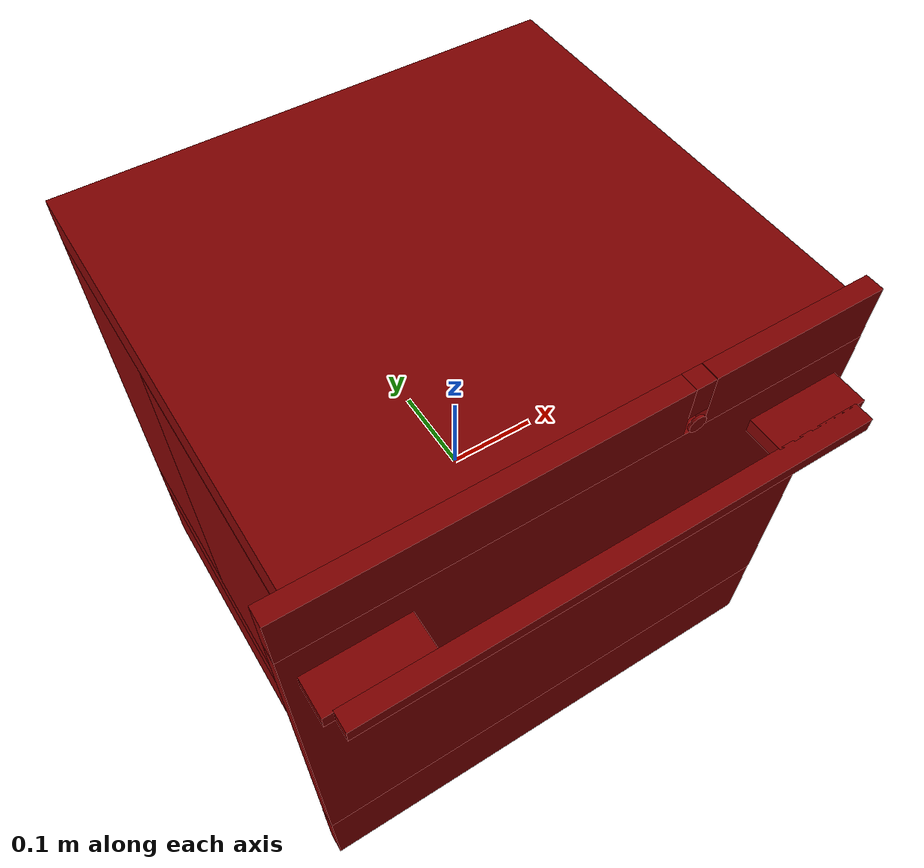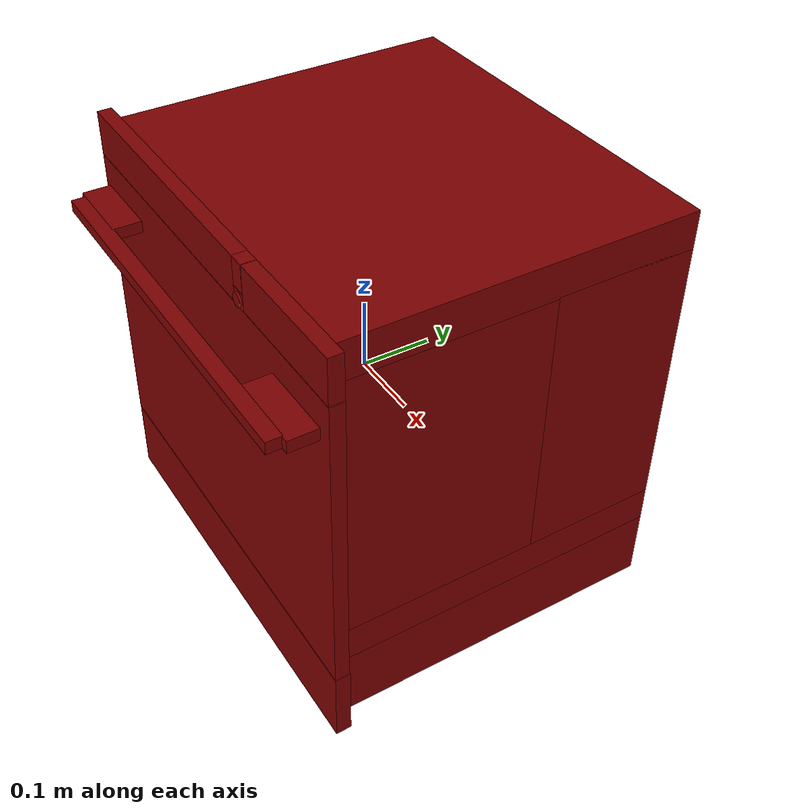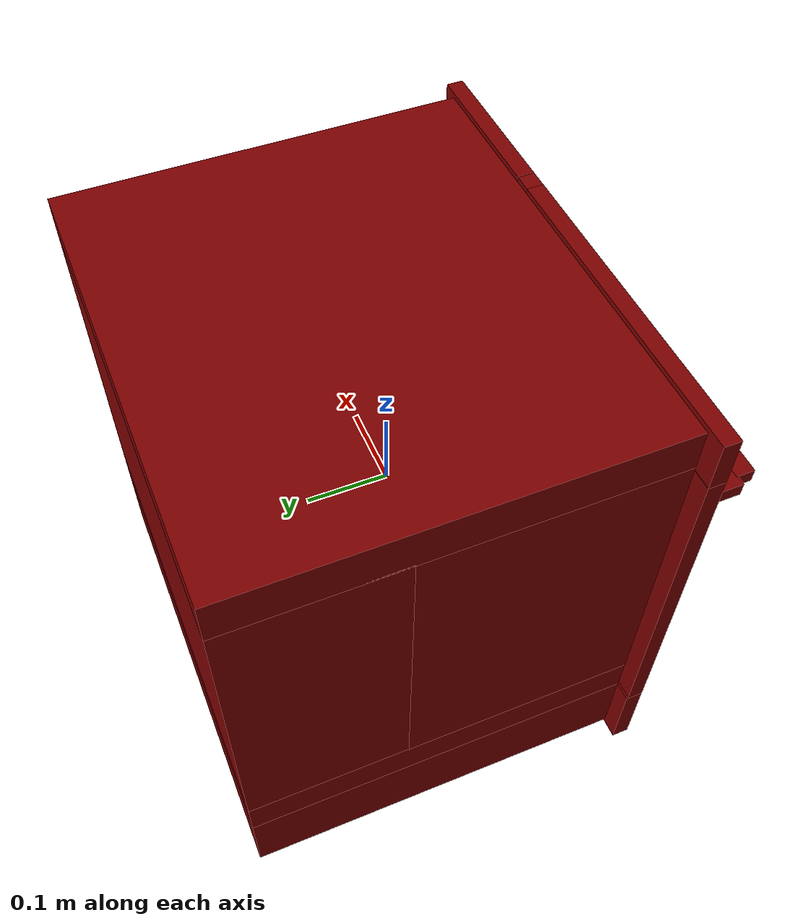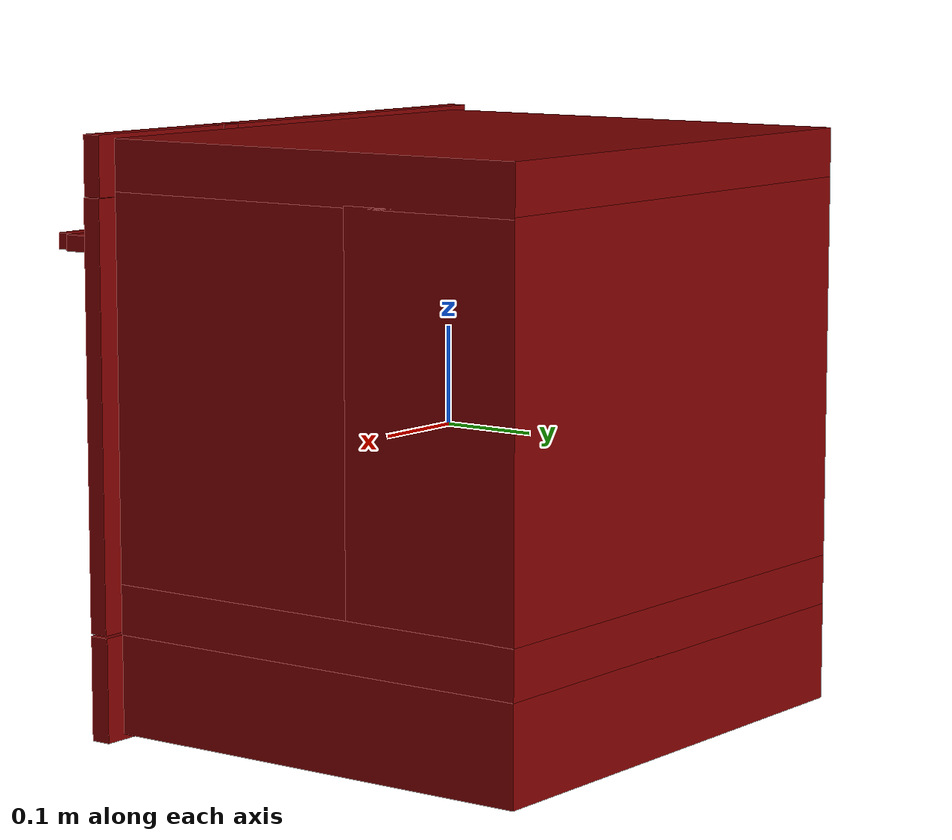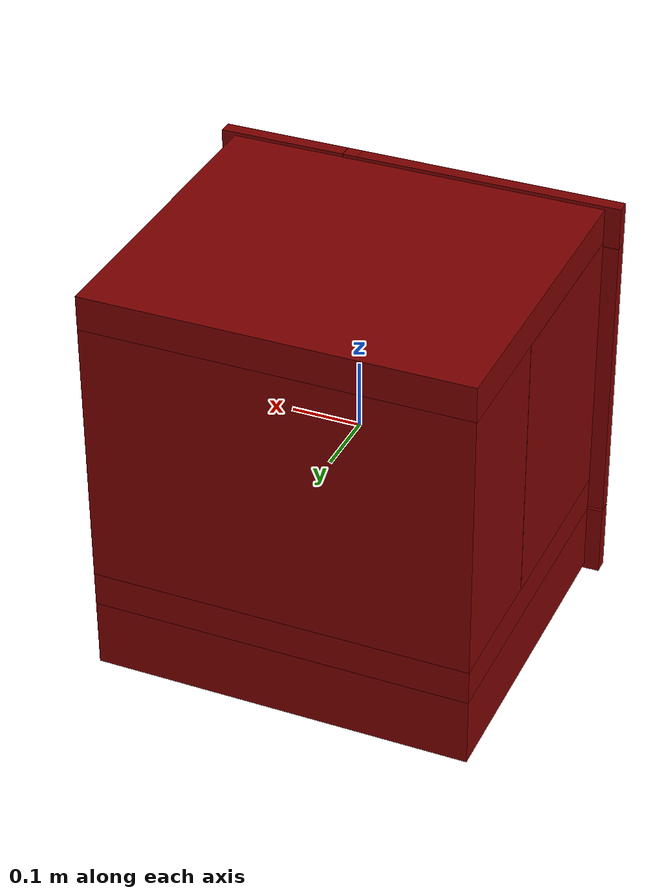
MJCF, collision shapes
<mujoco model="model">
  <compiler angle="radian"/>
  <asset>
    <mesh file="visuals/Body001.obj" name="Body001_vis"/>
    <mesh file="visuals/Button001.obj" name="Button001_vis"/>
    <mesh file="visuals/Contanier001.obj" name="Contanier001_vis"/>
    <mesh file="visuals/Contanier002.obj" name="Contanier002_vis"/>
    <mesh file="visuals/Door001.obj" name="Door001_vis"/>
    <mesh file="visuals/Handle001.obj" name="Handle001_vis"/>
    <texture file="visuals/T_BC001.png" name="Body001_material" type="2d"/>
    <material name="Body001_material" rgba="1 1 1 1.0" texture="Body001_material" shininess="0.4472135901451111" specular="0.3103448502657381"/>
    <texture file="visuals/T_BC001.png" name="Contanier001_material" type="2d"/>
    <material name="Contanier001_material" rgba="1 1 1 1.0" texture="Contanier001_material" shininess="0.4472135901451111" specular="0.3103448502657381"/>
    <texture file="visuals/T_BC001.png" name="Contanier002_material" type="2d"/>
    <material name="Contanier002_material" rgba="1 1 1 1.0" texture="Contanier002_material" shininess="0.4472135901451111" specular="0.3103448502657381"/>
    <texture file="visuals/T_BC001.png" name="Door001_material" type="2d"/>
    <material name="Door001_material" rgba="1 1 1 1.0" texture="Door001_material" shininess="0.4472135901451111" specular="0.3103448502657381"/>
    <texture file="visuals/T_BC001.png" name="Button001_material" type="2d"/>
    <material name="Button001_material" rgba="1 1 1 1.0" texture="Button001_material" shininess="0.4472135901451111" specular="0.3103448502657381"/>
    <texture file="visuals/T_BC001.png" name="Handle001_material" type="2d"/>
    <material name="Handle001_material" rgba="1 1 1 1.0" texture="Handle001_material" shininess="0.4472135901451111" specular="0.3103448502657381"/>
  </asset>
  <default>
    <default class="visual">
      <geom conaffinity="0" contype="0" group="1" type="mesh"/>
    </default>
    <default class="collision">
      <geom group="0" rgba="0.5 0 0 0.5"/>
    </default>
    <default class="spawn">
      <geom group="0" rgba="1 1 1 0.5" contype="0" conaffinity="0"/>
      <site group="0" rgba="1 1 1 0.5"/>
    </default>
    <default class="region">
      <geom group="1" conaffinity="0" contype="0" rgba="0 1 0 0"/>
    </default>
  </default>
  <worldbody>
    <body>
      <body name="object">
        <geom mesh="Body001_vis" type="mesh" solimp="0.998 0.998 0.001" solref="0.001 1" density="100" friction="0.95 0.3 0.1" class="visual" material="Body001_material"/>
        <geom class="collision" type="box" pos="0.000255 -0.210067 -0.250192" size="0.2981124520301819 0.010593920946121216 0.05353168398141861" quat="1.0 0.0 0.0 0.0"/>
        <geom class="collision" type="box" pos="0.000336 0.040118 -0.247284" size="0.2755833566188812 0.24018648266792297 0.050623439252376556" quat="1.0 0.0 0.0 0.0"/>
        <geom class="collision" type="box" pos="0.000336 0.040118 -0.171345" size="0.2755833566188812 0.24018648266792297 0.026016145944595337" quat="1.0 0.0 0.0 0.0"/>
        <geom class="collision" type="box" pos="0.000336 0.182527 0.050870" size="0.2755833566188812 0.09777771681547165 0.19672732055187225" quat="1.0 0.0 0.0 0.0"/>
        <geom class="collision" type="box" pos="0.000336 0.040118 0.271533" size="0.2755833566188812 0.24018648266792297 0.02605275809764862" quat="1.0 0.0 0.0 0.0"/>
        <geom class="collision" type="box" pos="0.249735 -0.057236 0.049795" size="0.0261838361620903 0.1428317427635193 0.19634130597114563" quat="1.0 0.0 0.0 0.0"/>
        <geom class="collision" type="box" pos="-0.249264 -0.057236 0.049795" size="0.0261838361620903 0.1428317427635193 0.19634130597114563" quat="1.0 0.0 0.0 0.0"/>
        <geom class="collision" type="box" pos="-0.203535 -0.057236 0.225325" size="0.01993134617805481 0.1428317427635193 0.021066248416900635" quat="1.0 0.0 0.0 0.0"/>
        <geom class="collision" type="box" pos="0.204210 -0.057236 0.224117" size="0.02164904586970806 0.1428317427635193 0.023869670927524567" quat="1.0 0.0 0.0 0.0"/>
        <geom class="collision" type="box" pos="0.204210 -0.057236 -0.123763" size="0.02164904586970806 0.1428317427635193 0.023869670927524567" quat="1.0 0.0 0.0 0.0"/>
        <geom class="collision" type="box" pos="-0.202216 -0.057236 -0.123763" size="0.02164904586970806 0.1428317427635193 0.023869670927524567" quat="1.0 0.0 0.0 0.0"/>
        <body name="Contanier001">
          <joint axis="0.0 -1.0 0.0" pos="-0.000687 -0.043263 0.074538" limited="true" name="Contanier001_joint" range="0.0 0.1" type="slide" damping="1" frictionloss="1" armature=".01" stiffness="0.05"/>
          <geom mesh="Contanier001_vis" type="mesh" solimp="0.998 0.998 0.001" solref="0.001 1" density="100" friction="0.95 0.3 0.1" class="visual" material="Contanier001_material"/>
          <geom class="collision" type="box" pos="0.000336 -0.043786 0.073811" size="0.22210653126239777 0.1148512065410614 0.0028864219784736633" quat="1.0 0.0 0.0 0.0"/>
        </body>
        <body name="Contanier002">
          <joint axis="0.0 -1.0 0.0" pos="-0.000687 -0.043263 -0.051752" limited="true" name="Contanier002_joint" range="0.0 0.1" type="slide" damping="1" frictionloss="1" armature=".01" stiffness="0.05"/>
          <geom mesh="Contanier002_vis" type="mesh" solimp="0.998 0.998 0.001" solref="0.001 1" density="100" friction="0.95 0.3 0.1" class="visual" material="Contanier002_material"/>
          <geom class="collision" type="box" pos="0.000336 -0.043786 -0.053851" size="0.22210653126239777 0.1148512065410614 0.0028864219784736633" quat="1.0 0.0 0.0 0.0"/>
        </body>
        <body name="Door001">
          <joint axis="1.0 0.0 0.0" pos="-0.001642 -0.219000 -0.195310" limited="true" name="Door001_joint" range="0.0 0.5235987755982988" type="hinge" damping="1" frictionloss="1" armature=".01" stiffness="0.05"/>
          <geom mesh="Door001_vis" type="mesh" solimp="0.998 0.998 0.001" solref="0.001 1" density="100" friction="0.95 0.3 0.1" class="visual" material="Door001_material"/>
          <geom class="collision" type="box" pos="0.000255 -0.211066 0.022889" size="0.2981124520301819 0.009902313351631165 0.21728050708770752" quat="1.0 0.0 0.0 0.0"/>
          <geom class="collision" type="box" pos="-0.104366 -0.211066 0.271273" size="0.19349144399166107 0.009902313351631165 0.030613146722316742" quat="1.0 0.0 0.0 0.0"/>
          <geom class="collision" type="box" pos="0.204157 -0.211066 0.271273" size="0.09321153163909912 0.009902313351631165 0.030613146722316742" quat="1.0 0.0 0.0 0.0"/>
          <geom class="collision" type="box" pos="0.099680 -0.211066 0.282670" size="0.010717272758483887 0.009902313351631165 0.019216693937778473" quat="1.0 0.0 0.0 0.0"/>
          <body name="Button001">
            <joint axis="0.0 1.0 0.0" pos="0.100126 -0.222956 0.251305" limited="true" name="Button001_joint" range="0.0 0.002" type="slide" damping="1" frictionloss="1" armature=".01" stiffness="0.05"/>
            <geom mesh="Button001_vis" type="mesh" solimp="0.998 0.998 0.001" solref="0.001 1" density="100" friction="0.95 0.3 0.1" class="visual" material="Button001_material"/>
            <geom class="collision" type="cylinder" pos="0.100233 -0.222398 0.250957" size="0.009172111749649048 0.0014942876296117902" quat="0.7071068286895752 0.7071067690849304 0.0 0.0"/>
          </body>
          <body name="Handle001">
            <geom mesh="Handle001_vis" type="mesh" solimp="0.998 0.998 0.001" solref="0.001 1" density="100" friction="0.95 0.3 0.1" class="visual" material="Handle001_material"/>
            <geom class="collision" type="box" pos="-0.232364 -0.241402 0.192189" size="0.052160654217004776 0.019742034375667572 0.00819910317659378" quat="1.0 0.0 0.0 0.0"/>
            <geom class="collision" type="box" pos="0.228585 -0.241402 0.192189" size="0.052160654217004776 0.019742034375667572 0.00819910317659378" quat="1.0 0.0 0.0 0.0"/>
            <geom class="collision" type="box" pos="-0.001457 -0.269980 0.192189" size="0.27260294556617737 0.010659255087375641 0.00819910317659378" quat="1.0 0.0 0.0 0.0"/>
          </body>
        </body>
        <geom class="region" name="reg_main" type="box" pos="0.0 0.029764 -9.800000000001474e-05" size="0.304095 0.250859 0.303196"/>
        <geom class="region" name="reg_int" type="box" pos="-0.00022350000000000148 -0.0576525 0.04761599999999999" size="0.20731850000000002 0.1380155 0.18492"/>
      </body>
    </body>
  </worldbody>
  <actuator>
    <motor name="Contanier001_joint_actuator" joint="Contanier001_joint" gear="10"/>
    <motor name="Contanier002_joint_actuator" joint="Contanier002_joint" gear="10"/>
    <motor name="Door001_joint_actuator" joint="Door001_joint" gear="50"/>
    <motor name="Button001_joint_actuator" joint="Button001_joint" gear="0.5"/>
  </actuator>
</mujoco>
